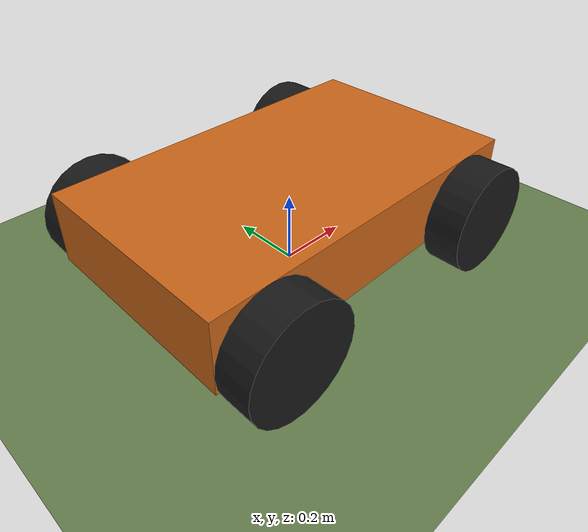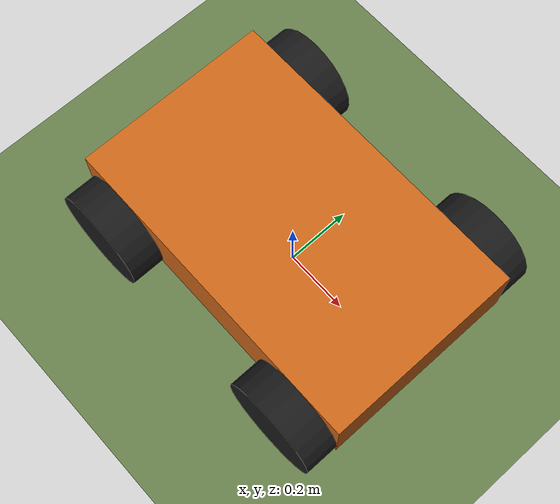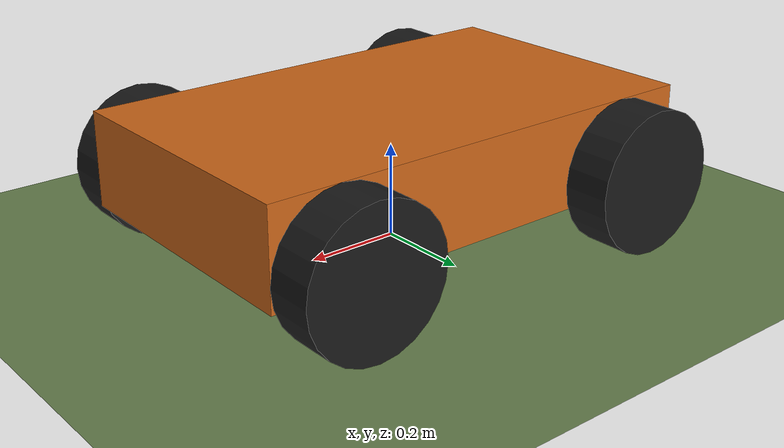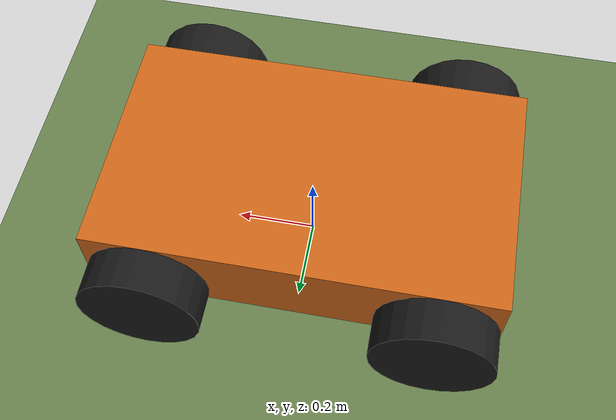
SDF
<?xml version="1.0"?>
<sdf version="1.9">
  <world name="flat_test">
    <physics name="1ms" type="ignored">
      <max_step_size>0.001</max_step_size>
      <real_time_factor>1.0</real_time_factor>
    </physics>
    <plugin filename="gz-sim-physics-system" name="gz::sim::systems::Physics"/>
    <plugin filename="gz-sim-user-commands-system" name="gz::sim::systems::UserCommands"/>
    <plugin filename="gz-sim-scene-broadcaster-system" name="gz::sim::systems::SceneBroadcaster"/>

    <light type="directional" name="sun">
      <cast_shadows>true</cast_shadows>
      <pose>0 0 10 0 0 0</pose>
      <direction>-0.5 0.1 -0.9</direction>
      <diffuse>0.9 0.9 0.9 1</diffuse>
    </light>

    <model name="ground">
      <static>true</static>
      <link name="link">
        <collision name="collision">
          <geometry><plane><normal>0 0 1</normal><size>100 100</size></plane></geometry>
          <surface><friction><ode><mu>0.8</mu><mu2>0.8</mu2></ode></friction></surface>
        </collision>
        <visual name="visual">
          <geometry><plane><normal>0 0 1</normal><size>100 100</size></plane></geometry>
          <material><ambient>0.4 0.5 0.3 1</ambient><diffuse>0.4 0.5 0.3 1</diffuse></material>
        </visual>
      </link>
    </model>

    <model name="ugv">
      <pose>0 0 0.2 0 0 0</pose>
      <link name="chassis">
        <inertial>
          <mass>20</mass>
          <inertia><ixx>0.667</ixx><iyy>1.733</iyy><izz>2.267</izz><ixy>0</ixy><ixz>0</ixz><iyz>0</iyz></inertia>
        </inertial>
        <collision name="collision"><geometry><box><size>1.0 0.6 0.2</size></box></geometry></collision>
        <visual name="visual">
          <geometry><box><size>1.0 0.6 0.2</size></box></geometry>
          <material><ambient>0.8 0.4 0.1 1</ambient><diffuse>0.8 0.4 0.1 1</diffuse></material>
        </visual>
      </link>

      <!-- Wheels: r=0.15, width=0.1. Pose roll -90deg so the cylinder axis lies along y. -->
      <link name="wheel_fl">
        <pose relative_to="chassis">0.35 0.35 -0.05 -1.5707 0 0</pose>
        <inertial><mass>2</mass><inertia><ixx>0.0129</ixx><iyy>0.0129</iyy><izz>0.0225</izz><ixy>0</ixy><ixz>0</ixz><iyz>0</iyz></inertia></inertial>
        <collision name="collision">
          <geometry><cylinder><radius>0.15</radius><length>0.1</length></cylinder></geometry>
          <surface><friction><ode><mu>1.0</mu><mu2>0.6</mu2><fdir1>1 0 0</fdir1></ode></friction></surface>
        </collision>
        <visual name="visual"><geometry><cylinder><radius>0.15</radius><length>0.1</length></cylinder></geometry>
          <material><ambient>0.1 0.1 0.1 1</ambient><diffuse>0.1 0.1 0.1 1</diffuse></material></visual>
      </link>
      <link name="wheel_rl">
        <pose relative_to="chassis">-0.35 0.35 -0.05 -1.5707 0 0</pose>
        <inertial><mass>2</mass><inertia><ixx>0.0129</ixx><iyy>0.0129</iyy><izz>0.0225</izz><ixy>0</ixy><ixz>0</ixz><iyz>0</iyz></inertia></inertial>
        <collision name="collision">
          <geometry><cylinder><radius>0.15</radius><length>0.1</length></cylinder></geometry>
          <surface><friction><ode><mu>1.0</mu><mu2>0.6</mu2><fdir1>1 0 0</fdir1></ode></friction></surface>
        </collision>
        <visual name="visual"><geometry><cylinder><radius>0.15</radius><length>0.1</length></cylinder></geometry>
          <material><ambient>0.1 0.1 0.1 1</ambient><diffuse>0.1 0.1 0.1 1</diffuse></material></visual>
      </link>
      <link name="wheel_fr">
        <pose relative_to="chassis">0.35 -0.35 -0.05 -1.5707 0 0</pose>
        <inertial><mass>2</mass><inertia><ixx>0.0129</ixx><iyy>0.0129</iyy><izz>0.0225</izz><ixy>0</ixy><ixz>0</ixz><iyz>0</iyz></inertia></inertial>
        <collision name="collision">
          <geometry><cylinder><radius>0.15</radius><length>0.1</length></cylinder></geometry>
          <surface><friction><ode><mu>1.0</mu><mu2>0.6</mu2><fdir1>1 0 0</fdir1></ode></friction></surface>
        </collision>
        <visual name="visual"><geometry><cylinder><radius>0.15</radius><length>0.1</length></cylinder></geometry>
          <material><ambient>0.1 0.1 0.1 1</ambient><diffuse>0.1 0.1 0.1 1</diffuse></material></visual>
      </link>
      <link name="wheel_rr">
        <pose relative_to="chassis">-0.35 -0.35 -0.05 -1.5707 0 0</pose>
        <inertial><mass>2</mass><inertia><ixx>0.0129</ixx><iyy>0.0129</iyy><izz>0.0225</izz><ixy>0</ixy><ixz>0</ixz><iyz>0</iyz></inertia></inertial>
        <collision name="collision">
          <geometry><cylinder><radius>0.15</radius><length>0.1</length></cylinder></geometry>
          <surface><friction><ode><mu>1.0</mu><mu2>0.6</mu2><fdir1>1 0 0</fdir1></ode></friction></surface>
        </collision>
        <visual name="visual"><geometry><cylinder><radius>0.15</radius><length>0.1</length></cylinder></geometry>
          <material><ambient>0.1 0.1 0.1 1</ambient><diffuse>0.1 0.1 0.1 1</diffuse></material></visual>
      </link>

      <joint name="joint_fl" type="revolute"><parent>chassis</parent><child>wheel_fl</child>
        <axis><xyz>0 0 1</xyz><limit><lower>-1e16</lower><upper>1e16</upper></limit></axis></joint>
      <joint name="joint_rl" type="revolute"><parent>chassis</parent><child>wheel_rl</child>
        <axis><xyz>0 0 1</xyz><limit><lower>-1e16</lower><upper>1e16</upper></limit></axis></joint>
      <joint name="joint_fr" type="revolute"><parent>chassis</parent><child>wheel_fr</child>
        <axis><xyz>0 0 1</xyz><limit><lower>-1e16</lower><upper>1e16</upper></limit></axis></joint>
      <joint name="joint_rr" type="revolute"><parent>chassis</parent><child>wheel_rr</child>
        <axis><xyz>0 0 1</xyz><limit><lower>-1e16</lower><upper>1e16</upper></limit></axis></joint>

      <plugin filename="gz-sim-diff-drive-system" name="gz::sim::systems::DiffDrive">
        <left_joint>joint_fl</left_joint>
        <left_joint>joint_rl</left_joint>
        <right_joint>joint_fr</right_joint>
        <right_joint>joint_rr</right_joint>
        <wheel_separation>0.7</wheel_separation>
        <wheel_radius>0.15</wheel_radius>
        <topic>cmd_vel</topic>
        <odom_topic>odom</odom_topic>
        <frame_id>odom</frame_id>
        <child_frame_id>chassis</child_frame_id>
        <max_linear_acceleration>2</max_linear_acceleration>
      </plugin>
    </model>
  </world>
</sdf>
